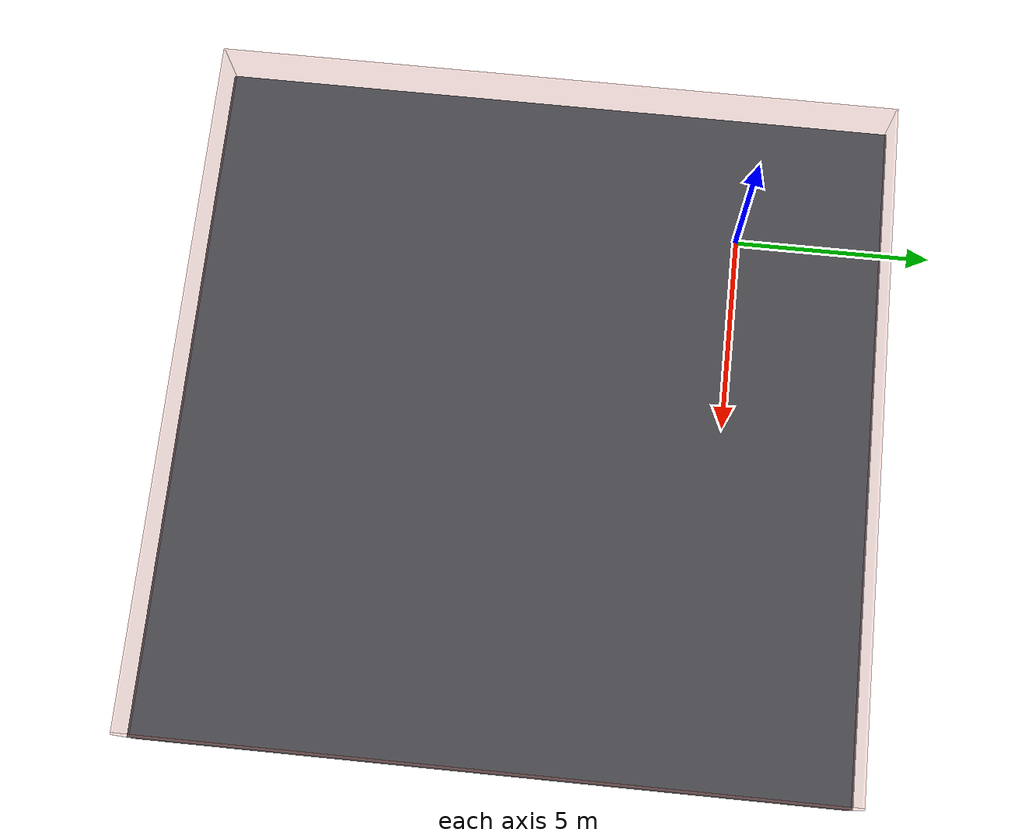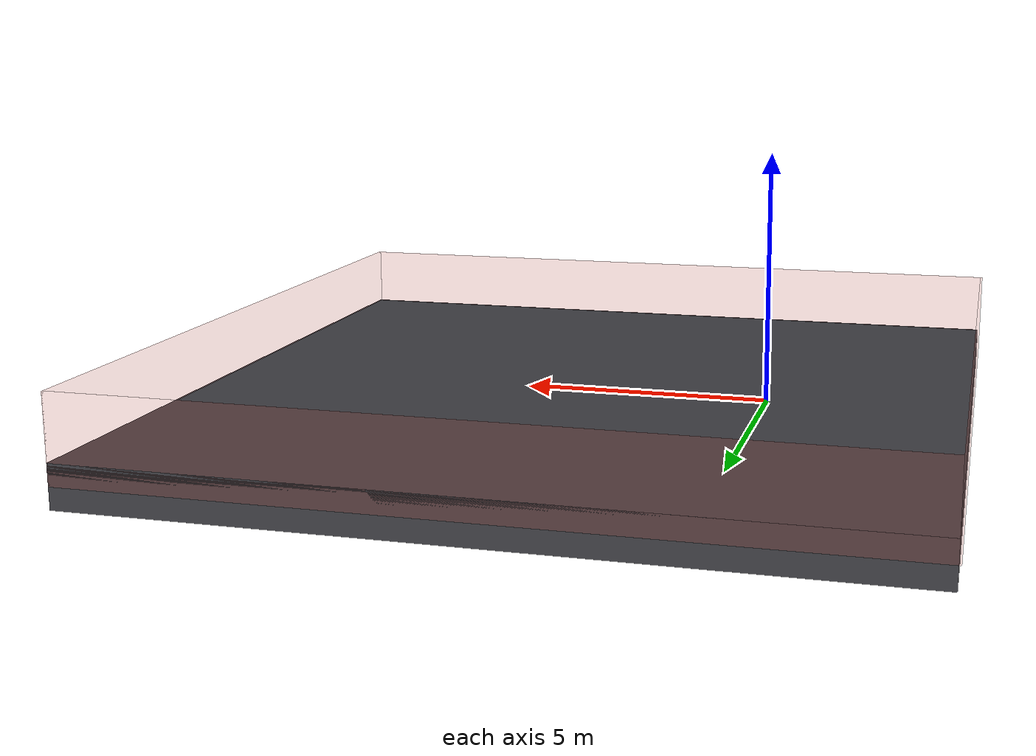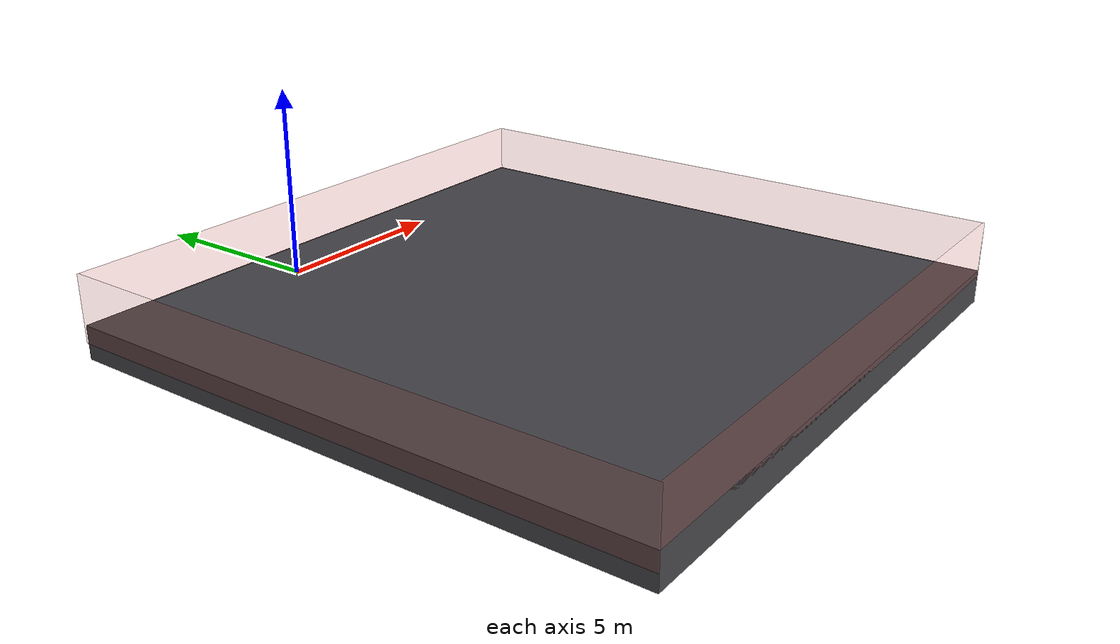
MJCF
<mujoco model="map2 indoor">
  <option gravity="0 0 -9.81" timestep="0.01" integrator="Euler" iterations="60" />

  <visual>
    <headlight diffuse="0.6 0.6 0.6" ambient="0.3 0.3 0.3" specular="0 0 0" />
    <rgba haze="0.15 0.25 0.35 1" />
    <global azimuth="120" elevation="-20" />
  </visual>

  <asset>
    <texture type="skybox" builtin="gradient" rgb1="0.43 0.53 0.64" rgb2="0 0 0"
             width="512" height="512" />
    <texture type="2d" name="groundplane" builtin="checker" mark="edge"
             rgb1="0.32 0.32 0.34" rgb2="0.24 0.24 0.26" markrgb="0.8 0.8 0.8"
             width="300" height="300" />
    <material name="groundplane" texture="groundplane" texuniform="true" texrepeat="10 10" />
  </asset>

  <worldbody>
    <light pos="5 -10 6" dir="-0.35 0.55 -1" directional="true" />
    <!-- ground box: x[-4,14] y[-14,4], top at z=-1.20 -->
    <geom name="floor" type="box" size="9 9 0.5" pos="5 -5 -1.7" material="groundplane"
          contype="1" conaffinity="1" />
    <!-- boundary walls, 2 m tall, translucent (same rgba as the map3
         guard rails) -->
    <geom name="wall_west"  type="box" size="0.025 9 1" pos="-4.025 -5 -0.7"
          rgba="0.85 0.30 0.25 0.1" contype="1" conaffinity="1" />
    <geom name="wall_east"  type="box" size="0.025 9 1" pos="13.975 -5 -0.7"
          rgba="0.85 0.30 0.25 0.1" contype="1" conaffinity="1" />
    <geom name="wall_south" type="box" size="9 0.025 1" pos="5 -13.975 -0.7"
          rgba="0.85 0.30 0.25 0.1" contype="1" conaffinity="1" />
    <geom name="wall_north" type="box" size="9 0.025 1" pos="5 3.975 -0.7"
          rgba="0.85 0.30 0.25 0.1" contype="1" conaffinity="1" />
  </worldbody>
</mujoco>
